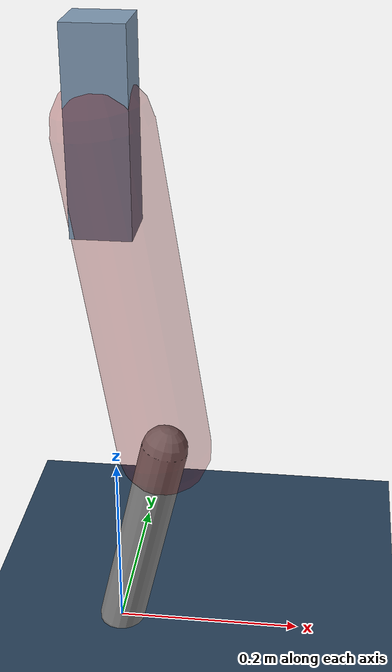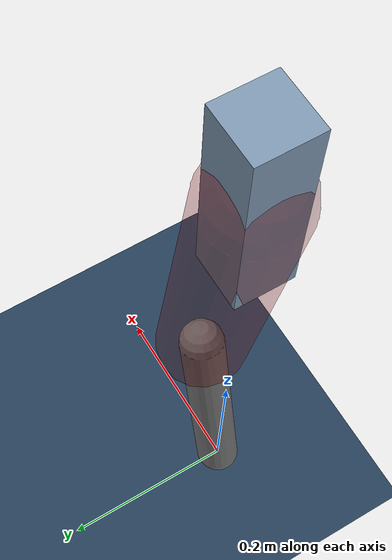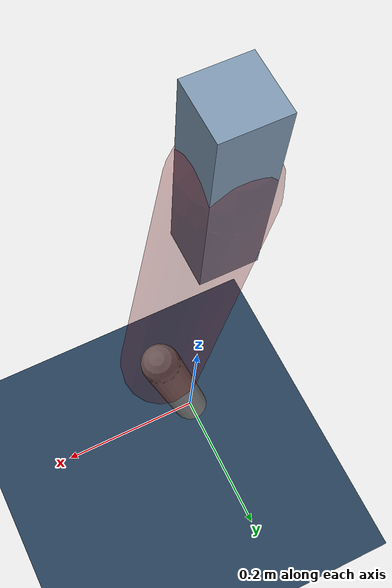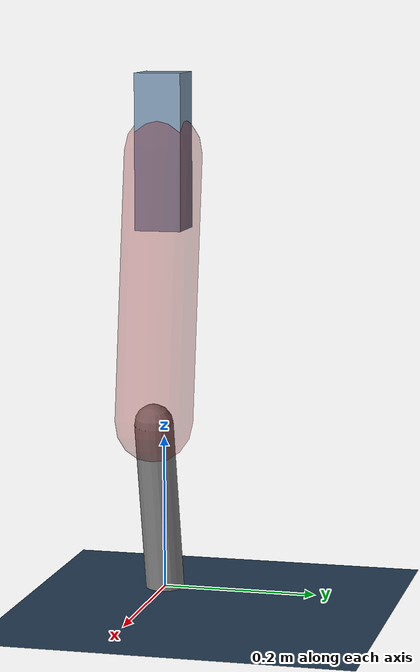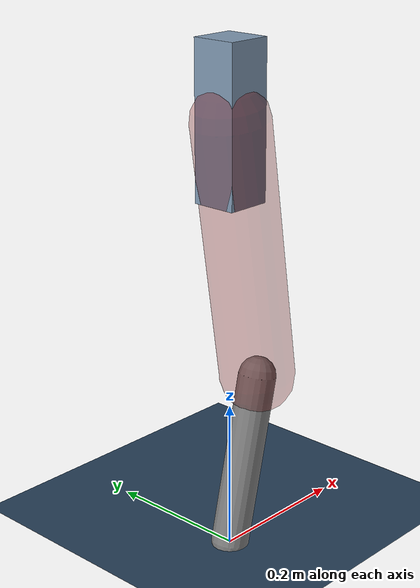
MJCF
<mujoco model="Hopper2D">
	<compiler inertiafromgeom="true" angle="radian" />
	<option timestep="0.001" integrator="implicit" cone="elliptic" solver="Newton" tolerance="1e-10" />

	<default>
		<geom contype="1" conaffinity="1" condim="3" friction="2 0.005 0.0001" solref="0.005 1" />
		<joint limited="true" damping="0.1" />
	</default>

	<asset>
		<texture name="skybox" type="skybox" builtin="gradient" rgb1=".4 .6 .8" rgb2="0 0 0" width="800" height="800" />
		<texture name="grid" type="2d" builtin="checker" rgb1=".1 .2 .3" rgb2=".2 .3 .4" width="300" height="300" mark="edge" markrgb=".2 .3 .4" />
		<material name="ground" texture="grid" texrepeat="1 1" texuniform="true" reflectance="0.1" />
		<material name="leg" rgba="0.5 0.6 0.7 1" />
	</asset>

	<worldbody>

		<geom name="floor" type="plane" size="5 5 0.25" material="ground" />

		<light directional="false" diffuse="0.8 0.8 0.8" specular="0.3 0.3 0.3" pos="0 0 2" dir="0 0 -1" />
		<light mode="targetbodycom" target="base" directional="false" diffuse="0.8 0.8 0.8" specular="0.3 0.3 0.3" pos="0 0 2" dir="0 0 -1" />

		<camera name="fixed" pos="0 -2 1" xyaxes="1 0 0 0 0 1" />
		<camera name="tracking" mode="trackcom" pos="0 -3 1" />

		<body name="root" pos="0 0 0.5718202534212911">
			<joint name="slide_x" type="slide" axis="1 0 0" range="-100 100" />
			<joint name="slide_z" type="slide" axis="0 0 1" range="0 10" />

			<body name="base" pos="0 0 0">
				<geom name="torso" type="box" size="0.03 0.03 0.1" mass="2.786" material="leg" />

				<body name="link1" pos="0 0 0" euler="0 1.419136040391582 0">
					<joint type="hinge" axis="0 -1 0" pos="0 0 0" name="hinge1" limited="true" range="-3.14 3.14" stiffness="0" damping="0.1" />
					<geom name="thigh" type="capsule" fromto="0 0 0 0.3482461523436248 0 0" size="0.05" rgba="0.5 0 0 0.3" mass="1.1217892265621496" />

					<body name="link2" pos="0.3482461523436248 0 0" euler="0 0.37886128154750187 0">
						<joint type="hinge" axis="0 -1 0" pos="0 0 0" name="hinge2" limited="true" range="-3.14 3.14" stiffness="0" damping="0.1" />
						<geom name="shank" type="capsule" fromto="0 0 0 0.23357410107766619 0 0" size="0.025" mass="0.4289592808621329" />

					</body>
				</body>
			</body>
		</body>
	</worldbody>

	<actuator>
		<motor name="torque1" joint="hinge1" ctrlrange="-115.4084174555424 115.4084174555424" ctrllimited="true" gear="1" />
		<motor name="torque2" joint="hinge2" ctrlrange="-85.49410032040744 85.49410032040744" ctrllimited="true" gear="1" />
	</actuator>
</mujoco>
